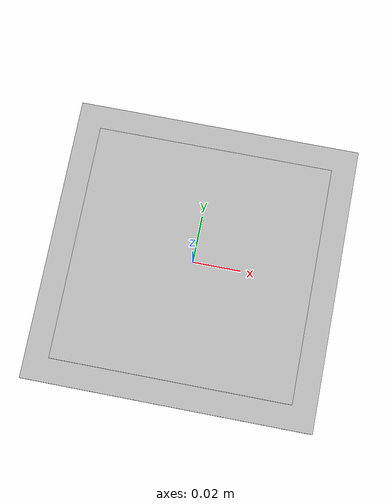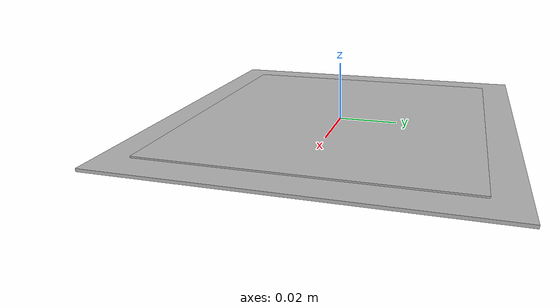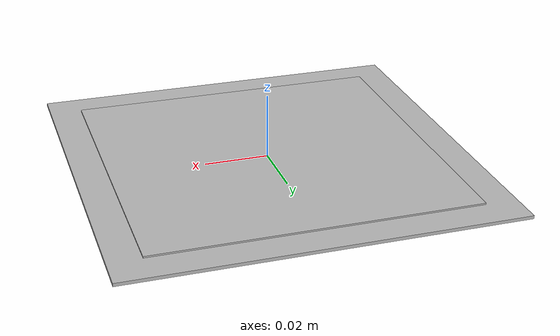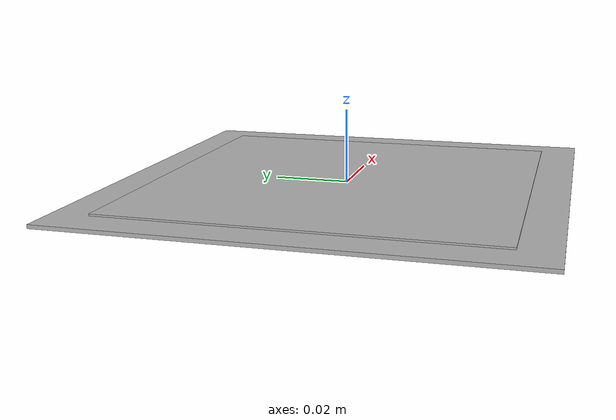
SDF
<?xml version="1.0" ?>
<sdf version="1.4">
  <model name="marker_115">
    <static>true</static>
    <link name="marker">
      <gravity>false</gravity>
      <visual name="tag">
        <geometry>
          <box>
            <size>0.10 0.10 0.002</size>
          </box>
        </geometry>
        <material>
          <script>
            <uri>model://marker_115/material/scripts</uri>
            <uri>model://marker_115/material/textures</uri>
            <name>marker_115</name>
          </script>
        </material>
      </visual>
      <visual name="support">
        <geometry>
          <box>
            <size>0.12 0.12 0.001</size>
          </box>
        </geometry>
        <material>Gazebo/White</material>
      </visual>

      <collision name="collision">
        <geometry>
          <box>
            <size>0.12 0.12 0.001</size>
          </box>
        </geometry>
      </collision>
    </link>
  </model>
</sdf>
